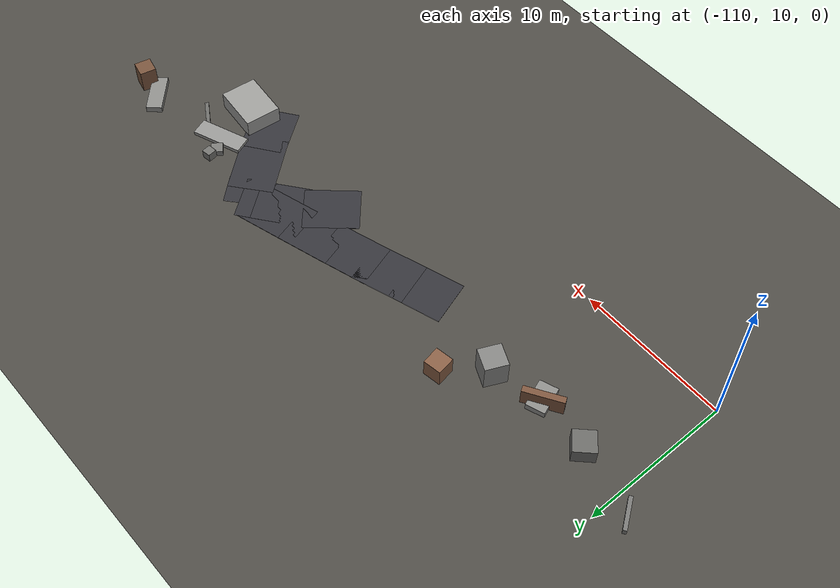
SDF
<sdf version="1.6">
 <world name="navitas_arena">
  <model name="ground_plane">
   <static>true</static>
   <link name="link">
    <collision name="collision">
     <geometry><plane><normal>0 0 1</normal><size>400 400</size></plane></geometry>
     <surface><friction><ode><mu>0.800</mu><mu2>0.800</mu2></ode></friction></surface>
    </collision>
    <visual name="visual">
     <cast_shadows>false</cast_shadows>
     <geometry><plane><normal>0 0 1</normal><size>400 400</size></plane></geometry>
     <material><ambient>0.300 0.290 0.270 1</ambient><diffuse>0.300 0.290 0.270 1</diffuse></material>
    </visual>
   </link>
  </model>
  <model name="road_kolay_1_21">
   <static>true</static>
   <pose>-93.182 17.102 0.040 0 0 0.311</pose>
   <link name="link">
    <collision name="col"><geometry><box><size>3.498 3.000 0.020</size></box></geometry></collision>
    <visual name="vis">
     <geometry><box><size>3.498 3.000 0.020</size></box></geometry>
     <material><ambient>0.20 0.20 0.22 1</ambient><diffuse>0.20 0.20 0.22 1</diffuse></material>
    </visual>
   </link>
  </model>
  <model name="road_kolay_1_22">
   <static>true</static>
   <pose>-90.697 17.910 0.040 0 0 0.317</pose>
   <link name="link">
    <collision name="col"><geometry><box><size>3.528 3.000 0.020</size></box></geometry></collision>
    <visual name="vis">
     <geometry><box><size>3.528 3.000 0.020</size></box></geometry>
     <material><ambient>0.20 0.20 0.22 1</ambient><diffuse>0.20 0.20 0.22 1</diffuse></material>
    </visual>
   </link>
  </model>
  <model name="road_kolay_1_23">
   <static>true</static>
   <pose>-88.113 18.730 0.040 0 0 0.298</pose>
   <link name="link">
    <collision name="col"><geometry><box><size>3.693 3.000 0.020</size></box></geometry></collision>
    <visual name="vis">
     <geometry><box><size>3.693 3.000 0.020</size></box></geometry>
     <material><ambient>0.20 0.20 0.22 1</ambient><diffuse>0.20 0.20 0.22 1</diffuse></material>
    </visual>
   </link>
  </model>
  <model name="road_kolay_1_24">
   <static>true</static>
   <pose>-85.493 19.520 0.040 0 0 0.287</pose>
   <link name="link">
    <collision name="col"><geometry><box><size>3.581 3.000 0.020</size></box></geometry></collision>
    <visual name="vis">
     <geometry><box><size>3.581 3.000 0.020</size></box></geometry>
     <material><ambient>0.20 0.20 0.22 1</ambient><diffuse>0.20 0.20 0.22 1</diffuse></material>
    </visual>
   </link>
  </model>
  <model name="road_kolay_1_25">
   <static>true</static>
   <pose>-82.669 20.348 0.040 0 0 0.283</pose>
   <link name="link">
    <collision name="col"><geometry><box><size>4.106 3.000 0.020</size></box></geometry></collision>
    <visual name="vis">
     <geometry><box><size>4.106 3.000 0.020</size></box></geometry>
     <material><ambient>0.20 0.20 0.22 1</ambient><diffuse>0.20 0.20 0.22 1</diffuse></material>
    </visual>
   </link>
  </model>
  <model name="road_kolay_2_15">
   <static>true</static>
   <pose>-84.601 17.516 0.040 0 0 0.839</pose>
   <link name="link">
    <collision name="col"><geometry><box><size>3.619 3.000 0.020</size></box></geometry></collision>
    <visual name="vis">
     <geometry><box><size>3.619 3.000 0.020</size></box></geometry>
     <material><ambient>0.20 0.20 0.22 1</ambient><diffuse>0.20 0.20 0.22 1</diffuse></material>
    </visual>
   </link>
  </model>
  <model name="road_kolay_2_16">
   <static>true</static>
   <pose>-82.476 19.461 0.040 0 0 0.655</pose>
   <link name="link">
    <collision name="col"><geometry><box><size>3.967 3.000 0.020</size></box></geometry></collision>
    <visual name="vis">
     <geometry><box><size>3.967 3.000 0.020</size></box></geometry>
     <material><ambient>0.20 0.20 0.22 1</ambient><diffuse>0.20 0.20 0.22 1</diffuse></material>
    </visual>
   </link>
  </model>
  <model name="road_kolay_2_17">
   <static>true</static>
   <pose>-80.853 20.697 0.040 0 0 0.640</pose>
   <link name="link">
    <collision name="col"><geometry><box><size>1.914 3.000 0.020</size></box></geometry></collision>
    <visual name="vis">
     <geometry><box><size>1.914 3.000 0.020</size></box></geometry>
     <material><ambient>0.20 0.20 0.22 1</ambient><diffuse>0.20 0.20 0.22 1</diffuse></material>
    </visual>
   </link>
  </model>
  <model name="road_kolay_3_17">
   <static>true</static>
   <pose>-76.812 16.484 0.040 0 0 2.197</pose>
   <link name="link">
    <collision name="col"><geometry><box><size>3.406 3.000 0.020</size></box></geometry></collision>
    <visual name="vis">
     <geometry><box><size>3.406 3.000 0.020</size></box></geometry>
     <material><ambient>0.20 0.20 0.22 1</ambient><diffuse>0.20 0.20 0.22 1</diffuse></material>
    </visual>
   </link>
  </model>
  <model name="road_kolay_3_18">
   <static>true</static>
   <pose>-78.616 18.815 0.040 0 0 2.254</pose>
   <link name="link">
    <collision name="col"><geometry><box><size>4.290 3.000 0.020</size></box></geometry></collision>
    <visual name="vis">
     <geometry><box><size>4.290 3.000 0.020</size></box></geometry>
     <material><ambient>0.20 0.20 0.22 1</ambient><diffuse>0.20 0.20 0.22 1</diffuse></material>
    </visual>
   </link>
  </model>
  <model name="road_kolay_3_19">
   <static>true</static>
   <pose>-80.066 20.565 0.040 0 0 2.289</pose>
   <link name="link">
    <collision name="col"><geometry><box><size>2.056 3.000 0.020</size></box></geometry></collision>
    <visual name="vis">
     <geometry><box><size>2.056 3.000 0.020</size></box></geometry>
     <material><ambient>0.20 0.20 0.22 1</ambient><diffuse>0.20 0.20 0.22 1</diffuse></material>
    </visual>
   </link>
  </model>
  <model name="blk_kolay_3_1_5">
   <static>true</static>
   <pose>-74.827 16.489 0.600 0 0 3.044</pose>
   <link name="link">
    <collision name="col"><geometry><box><size>3.195 2.389 1.200</size></box></geometry></collision>
    <visual name="vis">
     <geometry><box><size>3.195 2.389 1.200</size></box></geometry>
     <material><ambient>0.60 0.60 0.59 1</ambient><diffuse>0.60 0.60 0.59 1</diffuse></material>
    </visual>
   </link>
  </model>
  <model name="deb_kolay_17">
   <static>true</static>
   <pose>-73.048 18.825 0.095 0 0 2.584</pose>
   <link name="link">
    <collision name="col"><geometry><box><size>1.971 0.254 0.190</size></box></geometry></collision>
    <visual name="vis">
     <geometry><box><size>1.971 0.254 0.190</size></box></geometry>
     <material><ambient>0.41 0.41 0.40 1</ambient><diffuse>0.41 0.41 0.40 1</diffuse></material>
    </visual>
   </link>
  </model>
  <model name="deb_kolay_23">
   <static>true</static>
   <pose>-99.932 18.030 0.927 0 0 2.712</pose>
   <link name="link">
    <collision name="col"><geometry><box><size>1.480 1.480 1.854</size></box></geometry></collision>
    <visual name="vis">
     <geometry><box><size>1.480 1.480 1.854</size></box></geometry>
     <material><ambient>0.51 0.51 0.50 1</ambient><diffuse>0.51 0.51 0.50 1</diffuse></material>
    </visual>
   </link>
  </model>
  <model name="deb_kolay_36">
   <static>true</static>
   <pose>-106.814 17.517 0.539 0 0 2.361</pose>
   <link name="link">
    <collision name="col"><geometry><box><size>1.432 1.432 1.078</size></box></geometry></collision>
    <visual name="vis">
     <geometry><box><size>1.432 1.432 1.078</size></box></geometry>
     <material><ambient>0.41 0.41 0.40 1</ambient><diffuse>0.41 0.41 0.40 1</diffuse></material>
    </visual>
   </link>
  </model>
  <model name="deb_kolay_79">
   <static>true</static>
   <pose>-103.078 17.055 0.225 0 0 1.916</pose>
   <link name="link">
    <collision name="col"><geometry><box><size>1.849 1.230 0.450</size></box></geometry></collision>
    <visual name="vis">
     <geometry><box><size>1.849 1.230 0.450</size></box></geometry>
     <material><ambient>0.54 0.54 0.53 1</ambient><diffuse>0.54 0.54 0.53 1</diffuse></material>
    </visual>
   </link>
  </model>
  <model name="deb_kolay_97">
   <static>true</static>
   <pose>-69.487 20.395 0.209 0 0 2.380</pose>
   <link name="link">
    <collision name="col"><geometry><box><size>2.750 1.044 0.418</size></box></geometry></collision>
    <visual name="vis">
     <geometry><box><size>2.750 1.044 0.418</size></box></geometry>
     <material><ambient>0.54 0.54 0.53 1</ambient><diffuse>0.54 0.54 0.53 1</diffuse></material>
    </visual>
   </link>
  </model>
  <model name="deb_kolay_110">
   <static>true</static>
   <pose>-67.944 19.598 0.111 0 0 0.061</pose>
   <link name="link">
    <collision name="col"><geometry><box><size>2.141 0.218 0.222</size></box></geometry></collision>
    <visual name="vis">
     <geometry><box><size>2.141 0.218 0.222</size></box></geometry>
     <material><ambient>0.48 0.34 0.24 1</ambient><diffuse>0.48 0.34 0.24 1</diffuse></material>
    </visual>
   </link>
  </model>
  <model name="deb_kolay_125">
   <static>true</static>
   <pose>-76.026 20.173 0.198 0 0 0.932</pose>
   <link name="link">
    <collision name="col"><geometry><box><size>0.757 0.757 0.396</size></box></geometry></collision>
    <visual name="vis">
     <geometry><box><size>0.757 0.757 0.396</size></box></geometry>
     <material><ambient>0.47 0.47 0.46 1</ambient><diffuse>0.47 0.47 0.46 1</diffuse></material>
    </visual>
   </link>
  </model>
  <model name="deb_kolay_137">
   <static>true</static>
   <pose>-68.031 20.167 0.783 0 0 1.356</pose>
   <link name="link">
    <collision name="col"><geometry><box><size>1.081 1.081 1.567</size></box></geometry></collision>
    <visual name="vis">
     <geometry><box><size>1.081 1.081 1.567</size></box></geometry>
     <material><ambient>0.46 0.32 0.23 1</ambient><diffuse>0.46 0.32 0.23 1</diffuse></material>
    </visual>
   </link>
  </model>
  <model name="deb_kolay_149">
   <static>true</static>
   <pose>-76.065 20.797 0.295 0 0 1.712</pose>
   <link name="link">
    <collision name="col"><geometry><box><size>0.615 0.615 0.590</size></box></geometry></collision>
    <visual name="vis">
     <geometry><box><size>0.615 0.615 0.590</size></box></geometry>
     <material><ambient>0.44 0.44 0.43 1</ambient><diffuse>0.44 0.44 0.43 1</diffuse></material>
    </visual>
   </link>
  </model>
  <model name="deb_kolay_162">
   <static>true</static>
   <pose>-111.166 18.514 0.205 0 0 2.177</pose>
   <link name="link">
    <collision name="col"><geometry><box><size>2.093 0.247 0.410</size></box></geometry></collision>
    <visual name="vis">
     <geometry><box><size>2.093 0.247 0.410</size></box></geometry>
     <material><ambient>0.46 0.46 0.45 1</ambient><diffuse>0.46 0.46 0.45 1</diffuse></material>
    </visual>
   </link>
  </model>
  <model name="deb_kolay_191">
   <static>true</static>
   <pose>-75.240 19.315 0.131 0 0 0.365</pose>
   <link name="link">
    <collision name="col"><geometry><box><size>3.416 1.179 0.262</size></box></geometry></collision>
    <visual name="vis">
     <geometry><box><size>3.416 1.179 0.262</size></box></geometry>
     <material><ambient>0.58 0.58 0.57 1</ambient><diffuse>0.58 0.58 0.57 1</diffuse></material>
    </visual>
   </link>
  </model>
  <model name="deb_kolay_195">
   <static>true</static>
   <pose>-97.857 20.305 0.645 0 0 1.731</pose>
   <link name="link">
    <collision name="col"><geometry><box><size>1.185 1.185 1.290</size></box></geometry></collision>
    <visual name="vis">
     <geometry><box><size>1.185 1.185 1.290</size></box></geometry>
     <material><ambient>0.53 0.37 0.27 1</ambient><diffuse>0.53 0.37 0.27 1</diffuse></material>
    </visual>
   </link>
  </model>
  <model name="chic_kolay_8">
   <static>true</static>
   <pose>-103.304 17.223 0.600 0 0 0.553</pose>
   <link name="link">
    <collision name="col"><geometry><box><size>2.569 0.416 1.200</size></box></geometry></collision>
    <visual name="vis">
     <geometry><box><size>2.569 0.416 1.200</size></box></geometry>
     <material><ambient>0.48 0.33 0.24 1</ambient><diffuse>0.48 0.33 0.24 1</diffuse></material>
    </visual>
   </link>
  </model>
 </world>
</sdf>
